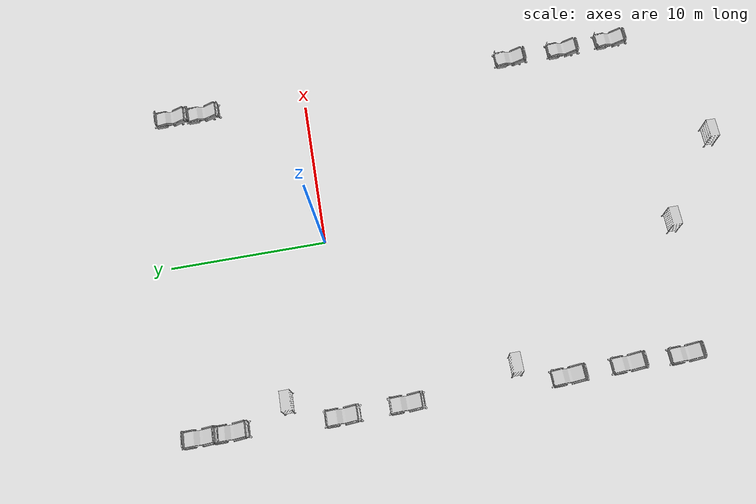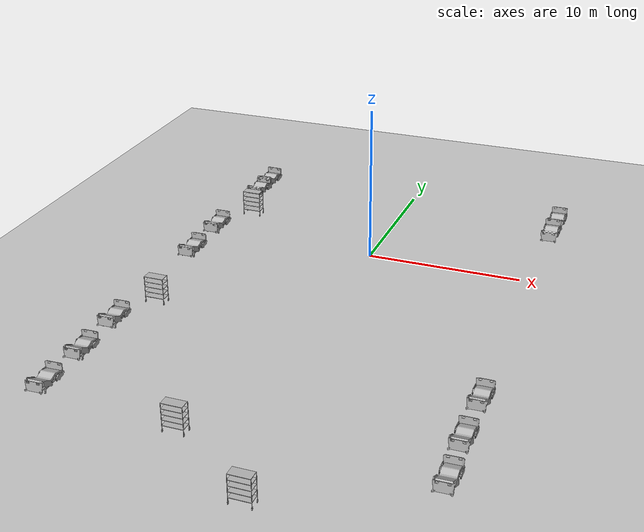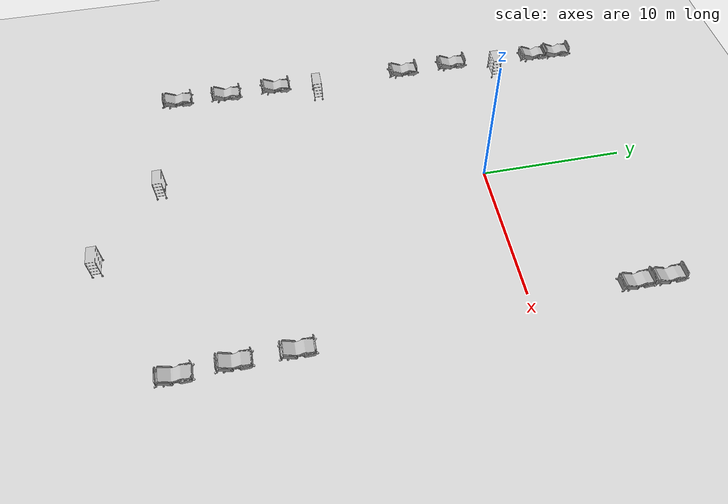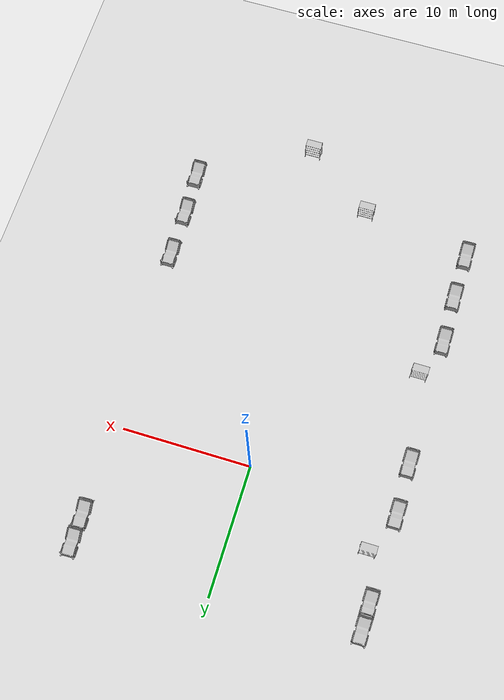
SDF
<sdf version="1.7">
 <world name="world">
  <gravity>0 0 -9.8</gravity>
  <physics name="default_physics" default="0" type="ode">
   <max_step_size>0.001</max_step_size>
   <real_time_factor>1</real_time_factor>
   <real_time_update_rate>1000</real_time_update_rate>
  </physics>
  <scene><ambient>0.6 0.6 0.6 1</ambient><background>0.4 0.4 0.4 1</background><shadows>0</shadows></scene>
  <light name="sun" type="directional">
   <pose>0 0 10 0 -0 0</pose>
   <diffuse>0.8 0.8 0.8 1</diffuse>
   <specular>0.2 0.2 0.2 1</specular>
   <attenuation>
    <range>1000</range>
    <constant>0.9</constant>
    <linear>0.01</linear>
    <quadratic>0.001</quadratic>
   </attenuation>
   <direction>-0.5 0.1 -0.9</direction>
   <spot><inner_angle>0</inner_angle><outer_angle>0</outer_angle><falloff>0</falloff></spot>
  </light>
  <model name="ground_plane">
   <static>1</static>
   <link name="link">
    <collision name="collision">
     <geometry><plane><normal>0 0 1</normal><size>100 100</size></plane></geometry>
     <surface><friction><ode><mu>100</mu><mu2>50</mu2></ode></friction></surface>
    </collision>
    <visual name="visual">
     <cast_shadows>0</cast_shadows>
     <geometry><plane><normal>0 0 1</normal><size>100 100</size></plane></geometry>
     <material>
      <script><uri>file://media/materials/scripts/gazebo.material</uri><name>Gazebo/Grey</name></script>
     </material>
    </visual>
   </link>
   <pose>0 0 -0.1 0 -0 0</pose>
  </model>
  <model name="CGMClassic_1">
   <frame name="CGMClassic::__model__" attached_to="CGMClassic::body">
    <pose relative_to="__model__">11.1777 -18.4129 0 0 0 -3.13719</pose>
   </frame>
   <static>1</static>
   <link name="CGMClassic::body">
    <pose relative_to="CGMClassic::__model__">0 0 0 0 -0 0</pose>
    <visual name="visual">
     <geometry>
      <mesh><uri>model://CGMClassic/meshes/CGMClassic.obj</uri><scale>0.01 0.01 0.01</scale></mesh>
     </geometry>
    </visual>
    <collision name="collision">
     <geometry>
      <mesh><uri>model://CGMClassic/meshes/CGMClassic.obj</uri><scale>0.01 0.01 0.01</scale></mesh>
     </geometry>
    </collision>
   </link>
  </model>
  <model name="CGMClassic_2">
   <frame name="CGMClassic::__model__" attached_to="CGMClassic::body">
    <pose relative_to="__model__">11.1179 -14.6493 0 0 0 -3.13599</pose>
   </frame>
   <static>1</static>
   <link name="CGMClassic::body">
    <pose relative_to="CGMClassic::__model__">0 0 0 0 -0 0</pose>
    <visual name="visual">
     <geometry>
      <mesh><uri>model://CGMClassic/meshes/CGMClassic.obj</uri><scale>0.01 0.01 0.01</scale></mesh>
     </geometry>
    </visual>
    <collision name="collision">
     <geometry>
      <mesh><uri>model://CGMClassic/meshes/CGMClassic.obj</uri><scale>0.01 0.01 0.01</scale></mesh>
     </geometry>
    </collision>
   </link>
  </model>
  <model name="CGMClassic_3">
   <frame name="CGMClassic::__model__" attached_to="CGMClassic::body">
    <pose relative_to="__model__">-11.2304 -21.1134 0 0 0 -3.11834</pose>
   </frame>
   <static>1</static>
   <link name="CGMClassic::body">
    <pose relative_to="CGMClassic::__model__">0 0 0 0 -0 0</pose>
    <visual name="visual">
     <geometry>
      <mesh><uri>model://CGMClassic/meshes/CGMClassic.obj</uri><scale>0.01 0.01 0.01</scale></mesh>
     </geometry>
    </visual>
    <collision name="collision">
     <geometry>
      <mesh><uri>model://CGMClassic/meshes/CGMClassic.obj</uri><scale>0.01 0.01 0.01</scale></mesh>
     </geometry>
    </collision>
   </link>
  </model>
  <model name="CGMClassic_5">
   <frame name="CGMClassic::__model__" attached_to="CGMClassic::body">
    <pose relative_to="__model__">-11.0106 8.9505 -0.008203 -0.035019 -0.000392 3.13388</pose>
   </frame>
   <static>1</static>
   <link name="CGMClassic::body">
    <pose relative_to="CGMClassic::__model__">0 0 0 0 -0 0</pose>
    <visual name="visual">
     <geometry>
      <mesh><uri>model://CGMClassic/meshes/CGMClassic.obj</uri><scale>0.01 0.01 0.01</scale></mesh>
     </geometry>
    </visual>
    <collision name="collision">
     <geometry>
      <mesh><uri>model://CGMClassic/meshes/CGMClassic.obj</uri><scale>0.01 0.01 0.01</scale></mesh>
     </geometry>
    </collision>
   </link>
  </model>
  <model name="CGMClassic_6">
   <frame name="CGMClassic::__model__" attached_to="CGMClassic::body">
    <pose relative_to="__model__">-11.025 7.10335 0 -0.035021 1.8e-05 -3.13762</pose>
   </frame>
   <static>1</static>
   <link name="CGMClassic::body">
    <pose relative_to="CGMClassic::__model__">0 0 0 0 -0 0</pose>
    <visual name="visual">
     <geometry>
      <mesh><uri>model://CGMClassic/meshes/CGMClassic.obj</uri><scale>0.01 0.01 0.01</scale></mesh>
     </geometry>
    </visual>
    <collision name="collision">
     <geometry>
      <mesh><uri>model://CGMClassic/meshes/CGMClassic.obj</uri><scale>0.01 0.01 0.01</scale></mesh>
     </geometry>
    </collision>
   </link>
  </model>
  <model name="StorageRack_2">
   <frame name="StorageRack::__model__" attached_to="StorageRack::link">
    <pose relative_to="__model__">-2.69866 -22.4178 -8e-06 0 4e-06 0</pose>
   </frame>
   <link name="StorageRack::link">
    <pose relative_to="StorageRack::__model__">0 0 0 0 -0 0</pose>
    <visual name="visual">
     <geometry><mesh><uri>model://StorageRack/meshes/StorageRack.obj</uri></mesh></geometry>
    </visual>
    <collision name="collision">
     <geometry><mesh><uri>model://StorageRack/meshes/StorageRack.obj</uri></mesh></geometry>
    </collision>
   </link>
   <static>1</static>
  </model>
  <model name="CGMClassic_7">
   <frame name="CGMClassic::__model__" attached_to="CGMClassic::body">
    <pose relative_to="__model__">10.6166 9.06291 -0.008203 -0.03501 0.000885 -3.11285</pose>
   </frame>
   <static>1</static>
   <link name="CGMClassic::body">
    <pose relative_to="CGMClassic::__model__">0 0 0 0 -0 0</pose>
    <visual name="visual">
     <geometry>
      <mesh><uri>model://CGMClassic/meshes/CGMClassic.obj</uri><scale>0.01 0.01 0.01</scale></mesh>
     </geometry>
    </visual>
    <collision name="collision">
     <geometry>
      <mesh><uri>model://CGMClassic/meshes/CGMClassic.obj</uri><scale>0.01 0.01 0.01</scale></mesh>
     </geometry>
    </collision>
   </link>
  </model>
  <model name="CGMClassic_8">
   <frame name="CGMClassic::__model__" attached_to="CGMClassic::body">
    <pose relative_to="__model__">10.6006 6.90956 -0.008203 -0.035003 0.001133 -3.10576</pose>
   </frame>
   <static>1</static>
   <link name="CGMClassic::body">
    <pose relative_to="CGMClassic::__model__">0 0 0 0 -0 0</pose>
    <visual name="visual">
     <geometry>
      <mesh><uri>model://CGMClassic/meshes/CGMClassic.obj</uri><scale>0.01 0.01 0.01</scale></mesh>
     </geometry>
    </visual>
    <collision name="collision">
     <geometry>
      <mesh><uri>model://CGMClassic/meshes/CGMClassic.obj</uri><scale>0.01 0.01 0.01</scale></mesh>
     </geometry>
    </collision>
   </link>
  </model>
  <model name="CGMClassic_9">
   <frame name="CGMClassic::__model__" attached_to="CGMClassic::body">
    <pose relative_to="__model__">11.3613 -21.8867 0 0 0 -3.12292</pose>
   </frame>
   <static>1</static>
   <link name="CGMClassic::body">
    <pose relative_to="CGMClassic::__model__">0 0 0 0 -0 0</pose>
    <visual name="visual">
     <geometry>
      <mesh><uri>model://CGMClassic/meshes/CGMClassic.obj</uri><scale>0.01 0.01 0.01</scale></mesh>
     </geometry>
    </visual>
    <collision name="collision">
     <geometry>
      <mesh><uri>model://CGMClassic/meshes/CGMClassic.obj</uri><scale>0.01 0.01 0.01</scale></mesh>
     </geometry>
    </collision>
   </link>
  </model>
  <model name="StorageRack_3">
   <frame name="StorageRack::__model__" attached_to="StorageRack::link">
    <pose relative_to="__model__">-10.1178 -10.4694 -0 0 -0 0</pose>
   </frame>
   <link name="StorageRack::link">
    <pose relative_to="StorageRack::__model__">0 0 0 0 -0 0</pose>
    <visual name="visual">
     <geometry><mesh><uri>model://StorageRack/meshes/StorageRack.obj</uri></mesh></geometry>
    </visual>
    <collision name="collision">
     <geometry><mesh><uri>model://StorageRack/meshes/StorageRack.obj</uri></mesh></geometry>
    </collision>
   </link>
   <static>1</static>
  </model>
  <model name="StorageRack_4">
   <frame name="StorageRack::__model__" attached_to="StorageRack::link">
    <pose relative_to="__model__">-9.91557 3.5644 -9e-06 1e-06 1e-06 -0.000273</pose>
   </frame>
   <link name="StorageRack::link">
    <pose relative_to="StorageRack::__model__">0 0 0 0 -0 0</pose>
    <visual name="visual">
     <geometry><mesh><uri>model://StorageRack/meshes/StorageRack.obj</uri></mesh></geometry>
    </visual>
    <collision name="collision">
     <geometry><mesh><uri>model://StorageRack/meshes/StorageRack.obj</uri></mesh></geometry>
    </collision>
   </link>
   <static>1</static>
  </model>
  <magnetic_field>6e-06 2.3e-05 -4.2e-05</magnetic_field>
  <atmosphere type="adiabatic"/>
  <spherical_coordinates>
   <surface_model>EARTH_WGS84</surface_model>
   <latitude_deg>0</latitude_deg>
   <longitude_deg>0</longitude_deg>
   <elevation>0</elevation>
   <heading_deg>0</heading_deg>
  </spherical_coordinates>
  <model name="CGMClassic_3_clone">
   <frame name="CGMClassic::__model__" attached_to="CGMClassic::body">
    <pose relative_to="__model__">-11.2304 -21.1134 0 0 0 -3.11834</pose>
   </frame>
   <static>1</static>
   <link name="CGMClassic::body">
    <pose relative_to="CGMClassic::__model__">0 0 0 0 -0 0</pose>
    <visual name="visual">
     <geometry>
      <mesh><uri>model://CGMClassic/meshes/CGMClassic.obj</uri><scale>0.01 0.01 0.01</scale></mesh>
     </geometry>
    </visual>
    <collision name="collision">
     <geometry>
      <mesh><uri>model://CGMClassic/meshes/CGMClassic.obj</uri><scale>0.01 0.01 0.01</scale></mesh>
     </geometry>
    </collision>
   </link>
   <pose>-0.0532 7.4683 0 0 -0 0</pose>
  </model>
  <model name="CGMClassic_3_clone_0">
   <frame name="CGMClassic::__model__" attached_to="CGMClassic::body">
    <pose relative_to="__model__">-11.2304 -21.1134 0 0 0 -3.11834</pose>
   </frame>
   <static>1</static>
   <link name="CGMClassic::body">
    <pose relative_to="CGMClassic::__model__">0 0 0 0 -0 0</pose>
    <visual name="visual">
     <geometry>
      <mesh><uri>model://CGMClassic/meshes/CGMClassic.obj</uri><scale>0.01 0.01 0.01</scale></mesh>
     </geometry>
    </visual>
    <collision name="collision">
     <geometry>
      <mesh><uri>model://CGMClassic/meshes/CGMClassic.obj</uri><scale>0.01 0.01 0.01</scale></mesh>
     </geometry>
    </collision>
   </link>
   <pose>0.0449 3.6737 0 0 -0 0</pose>
  </model>
  <model name="StorageRack">
   <link name="link">
    <visual name="visual">
     <geometry><mesh><uri>model://StorageRack/meshes/StorageRack.obj</uri></mesh></geometry>
    </visual>
    <collision name="collision">
     <geometry><mesh><uri>model://StorageRack/meshes/StorageRack.obj</uri></mesh></geometry>
    </collision>
    <inertial>
     <inertia><ixx>1</ixx><ixy>0</ixy><ixz>0</ixz><iyy>1</iyy><iyz>0</iyz><izz>1</izz></inertia>
     <mass>1</mass>
    </inertial>
    <static>1</static>
   </link>
   <pose>2.868 -26.5333 -8e-06 -1e-06 3e-06 0</pose>
  </model>
  <model name="CGMClassic_6_clone">
   <frame name="CGMClassic::__model__" attached_to="CGMClassic::body">
    <pose relative_to="__model__">-11.025 7.10335 0 -0.035021 1.8e-05 -3.13762</pose>
   </frame>
   <static>1</static>
   <link name="CGMClassic::body">
    <pose relative_to="CGMClassic::__model__">0 0 0 0 -0 0</pose>
    <visual name="visual">
     <geometry>
      <mesh><uri>model://CGMClassic/meshes/CGMClassic.obj</uri><scale>0.01 0.01 0.01</scale></mesh>
     </geometry>
    </visual>
    <collision name="collision">
     <geometry>
      <mesh><uri>model://CGMClassic/meshes/CGMClassic.obj</uri><scale>0.01 0.01 0.01</scale></mesh>
     </geometry>
    </collision>
   </link>
   <pose>-0.1579 -10.6649 0 0 -0 0</pose>
  </model>
  <model name="CGMClassic_6_clone_clone">
   <frame name="CGMClassic::__model__" attached_to="CGMClassic::body">
    <pose relative_to="__model__">-11.025 7.10335 0 -0.035021 1.8e-05 -3.13762</pose>
   </frame>
   <static>1</static>
   <link name="CGMClassic::body">
    <pose relative_to="CGMClassic::__model__">0 0 0 0 -0 0</pose>
    <visual name="visual">
     <geometry>
      <mesh><uri>model://CGMClassic/meshes/CGMClassic.obj</uri><scale>0.01 0.01 0.01</scale></mesh>
     </geometry>
    </visual>
    <collision name="collision">
     <geometry>
      <mesh><uri>model://CGMClassic/meshes/CGMClassic.obj</uri><scale>0.01 0.01 0.01</scale></mesh>
     </geometry>
    </collision>
   </link>
   <pose>-0.2353 -6.7314 0 0 -0 0</pose>
  </model>
 </world>
</sdf>
